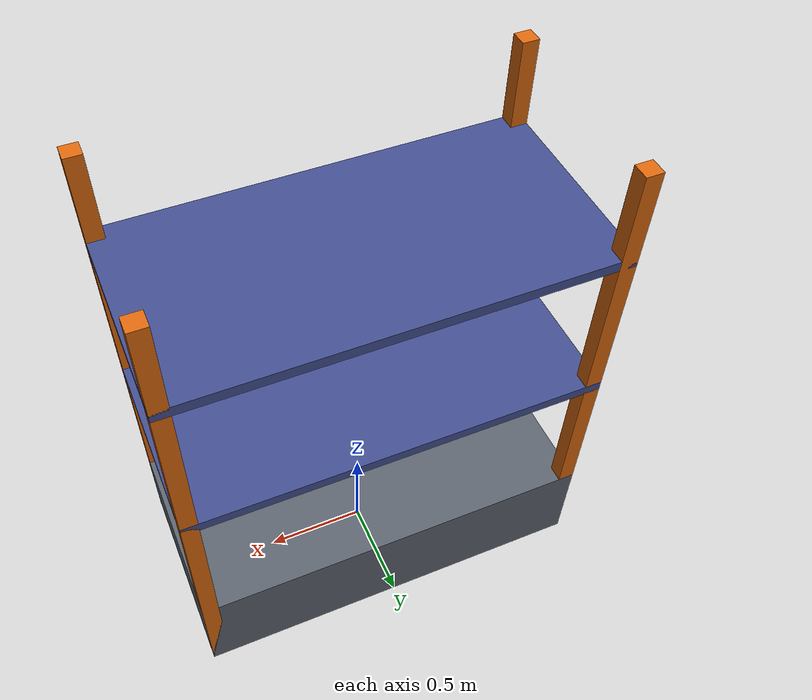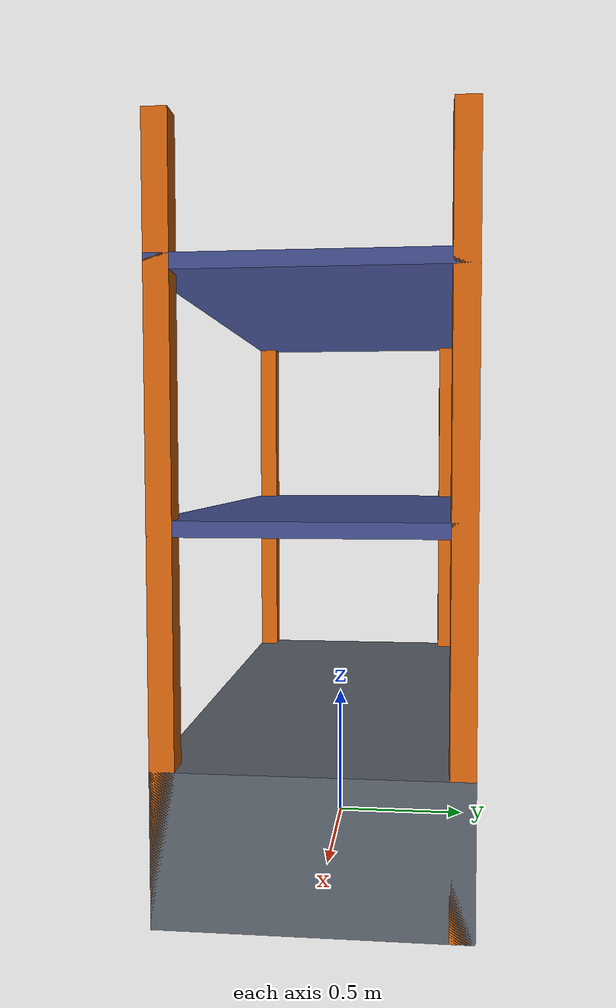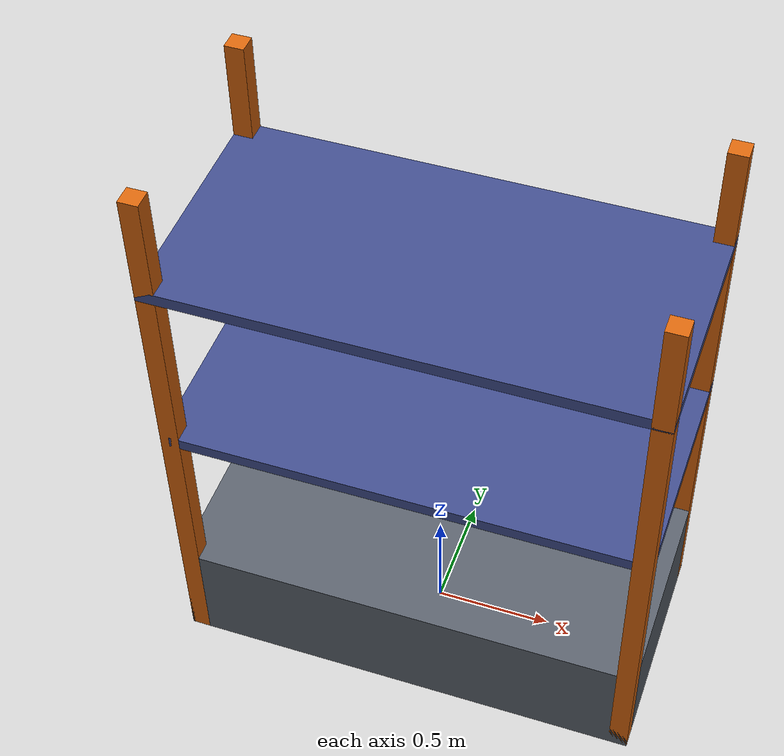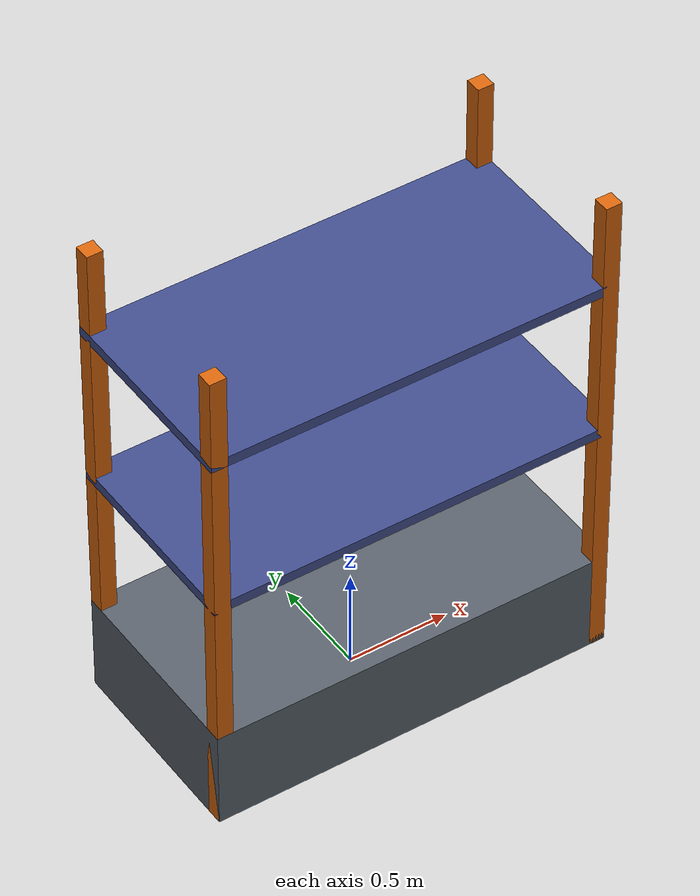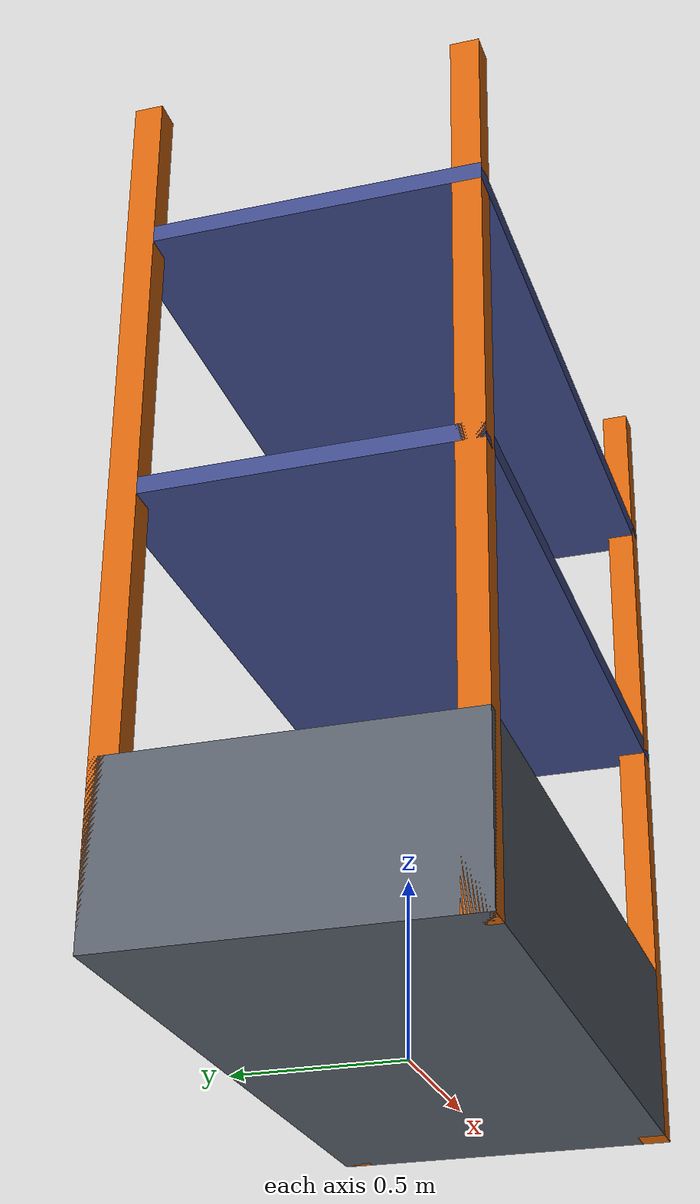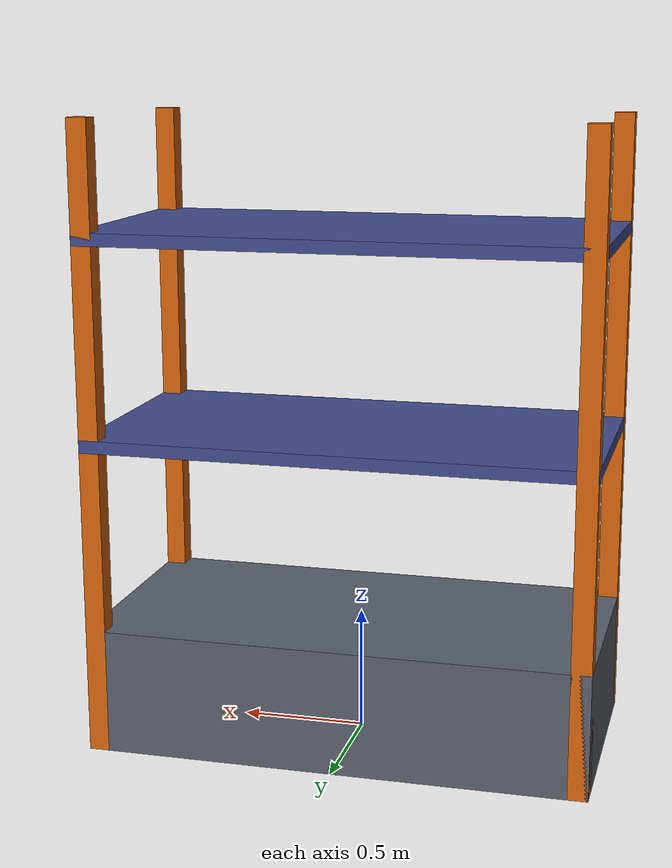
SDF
<?xml version="1.0" ?>
<sdf version="1.8">
  <model name="rack">
    <static>true</static>
    <link name="link">
      <collision name="collision">
        <pose>0 0 1.25 0 0 0</pose>
        <geometry><box><size>2.0 1.0 2.5</size></box></geometry>
      </collision>

      <!-- 하단 적재 블록 (바닥 단 파렛트+적재물, 상면 z = 0.50: 월드 생성기의 DECK_H 와 같아야 한다) -->
      <visual name="deck">
        <pose>0 0 0.25 0 0 0</pose>
        <geometry><box><size>2.0 1.0 0.50</size></box></geometry>
        <material>
          <ambient>0.35 0.38 0.42 1</ambient>
          <diffuse>0.35 0.38 0.42 1</diffuse>
          <specular>0.1 0.1 0.1 1</specular>
        </material>
      </visual>

      <!-- 기둥 4개 (주황 도장 강재) -->
      <visual name="post_0">
        <pose>-0.96 -0.46 1.25 0 0 0</pose>
        <geometry><box><size>0.08 0.08 2.5</size></box></geometry>
        <material><ambient>0.85 0.40 0.05 1</ambient><diffuse>0.85 0.40 0.05 1</diffuse></material>
      </visual>
      <visual name="post_1">
        <pose>0.96 -0.46 1.25 0 0 0</pose>
        <geometry><box><size>0.08 0.08 2.5</size></box></geometry>
        <material><ambient>0.85 0.40 0.05 1</ambient><diffuse>0.85 0.40 0.05 1</diffuse></material>
      </visual>
      <visual name="post_2">
        <pose>0.96 0.46 1.25 0 0 0</pose>
        <geometry><box><size>0.08 0.08 2.5</size></box></geometry>
        <material><ambient>0.85 0.40 0.05 1</ambient><diffuse>0.85 0.40 0.05 1</diffuse></material>
      </visual>
      <visual name="post_3">
        <pose>-0.96 0.46 1.25 0 0 0</pose>
        <geometry><box><size>0.08 0.08 2.5</size></box></geometry>
        <material><ambient>0.85 0.40 0.05 1</ambient><diffuse>0.85 0.40 0.05 1</diffuse></material>
      </visual>

      <!-- 선반 2단 (z = 1.25, 2.05) -->
      <visual name="shelf_1">
        <pose>0 0 1.25 0 0 0</pose>
        <geometry><box><size>2.0 1.0 0.05</size></box></geometry>
        <material><ambient>0.25 0.30 0.55 1</ambient><diffuse>0.25 0.30 0.55 1</diffuse></material>
      </visual>
      <visual name="shelf_2">
        <pose>0 0 2.05 0 0 0</pose>
        <geometry><box><size>2.0 1.0 0.05</size></box></geometry>
        <material><ambient>0.25 0.30 0.55 1</ambient><diffuse>0.25 0.30 0.55 1</diffuse></material>
      </visual>
    </link>
  </model>
</sdf>
